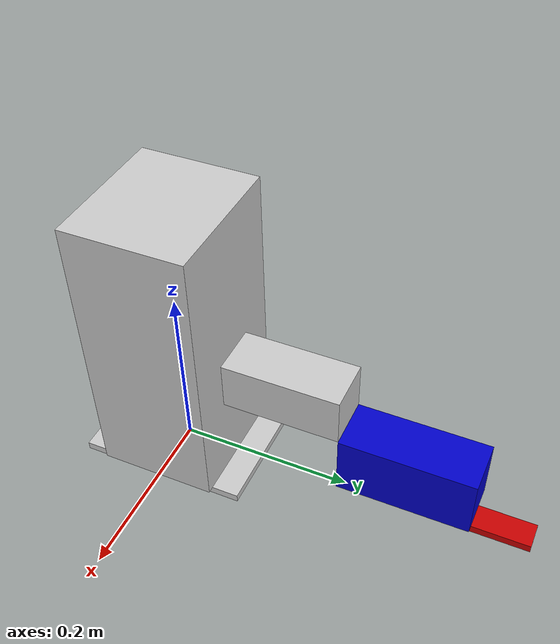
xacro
<?xml version="1.0" ?>

<robot name="myworkcell2" xmlns:xacro="http://ros.org/wiki/xacro">

<xacro:property name="damping_value" value="1" />
  <xacro:property name="friction_value" value="1" />
  <xacro:property name="mass_upper_links" value=".2" />
  <material name="blue">
    <color rgba="0 0 .8 .9"/>
  </material>
  <material name="pvc">
    <color rgba=".8 .8 .8 1"/>
  </material>
  <material name="black">
    <color rgba="0 0 0 1"/>
  </material>
  <material name="aluminum">
    <color rgba=".144 .144 .144 .8"/>
  </material>
  <material name="white">
      <color rgba="1 1 1 1"/>
  </material>
  <material name="red">
      <color rgba="0.8 0 0 1"/>
  </material>
  <material name="green">
      <color rgba="0 1 0 1"/>
  </material>
  <material name="yellow">
      <color rgba="1 1 0 1"/>
  </material>

  <!-- Used for fixing robot to Gazebo 'base_link'-->
  <link name="world">
      <origin xyz="0 0 0"/>
  </link>

  <link name="camera_frame">
    <visual>
      <geometry>
        <box size=".139 .195 .009"/>
      </geometry>
      <material name="pvc"/>
      <origin rpy="0 0 0" xyz="0 0 0" />
    </visual>
    <collision>
      <geometry>
        <box size=".139 .195 .009"/>
      </geometry>
    </collision>
    <inertial>
    	<mass value="4" />
         <inertia ixx="0.4" ixy="0.0" ixz="0.0" iyy="0.4" iyz="0.0" izz="0.2"/>
      <origin xyz="0 0 0" rpy="0 0 0" />
  	</inertial>
  </link>

  <joint name="fixed" type="fixed">
    <parent link="world"/>
    <child link="camera_frame"/>
    <origin xyz="0 0 0" rpy="0 0 0"/>
  </joint>

  <link name="scapula">
    <visual>
      <geometry>
        <box size=".155 .134 .320"/>
      </geometry>
      <origin rpy="0 0 0" xyz="0 0 .075"/>
      <material name="pvc"/>
    </visual>
    <collision>
      <geometry>
        <box size=".155 .134 .320"/>
      </geometry>
    </collision>
    <inertial>
    		<mass value="${mass_upper_links}" />
    <inertia ixx="0.4" ixy="0.0" ixz="0.0" iyy="0.4" iyz="0.0" izz="0.2"/>
  	</inertial>
  </link>

  <joint name="waist" type="revolute">
    <parent link="camera_frame"/>
    <child link="scapula"/>
    <axis xyz="0 0 1" />
    <origin xyz="0 0 .09"/>
    <limit lower="-3" upper="3" effort="30" velocity="1" />
    <visual>
      <material name="aluminum"/>
    </visual>
    <dynamics damping="${damping_value}" friction="${friction_value}" />
  </joint>

  <transmission name="waist_trans">
    <type>transmission_interface/SimpleTransmission</type>
    <actuator name="$waist_motor">
      <mechanicalReduction>20</mechanicalReduction>
    </actuator>
    <joint name="waist">
      <hardwareInterface>hardware_interface/PositionJointInterface</hardwareInterface>
    </joint>
  </transmission>

  <link name="humerus">
    <visual>
      <geometry>
        <box size=".200 .059 .056"/>
      </geometry>
      <origin rpy="0 0 1.57057" xyz="0 .100 0"/>
      <material name="pvc"/>
    </visual>
    <collision>
      <geometry>
        <box size=".255 .059 .056"/>
      </geometry>
    </collision>
    <inertial>
    		<mass value="${mass_upper_links}" />
    <inertia ixx="0.4" ixy="0.0" ixz="0.0" iyy="0.4" iyz="0.0" izz="0.2"/>
  </inertial>
  </link>

  <joint name="shoulder" type="prismatic">
    <parent link="scapula"/>
    <child link="humerus"/>
    <axis xyz="0 0 1" />
    <origin xyz="0 0 .04" rpy="0 0 0" />
    <limit lower="0" upper=".155" effort="30" velocity="1"/>
    <dynamics damping="${damping_value}" friction="${friction_value}" />
  </joint>

  <transmission name="shoulder_trans">
    <type>transmission_interface/SimpleTransmission</type>
    <actuator name="$shoulder_motor">
      <mechanicalReduction>5</mechanicalReduction>
    </actuator>
    <joint name="shoulder">
      <hardwareInterface>hardware_interface/PositionJointInterface</hardwareInterface>
    </joint>
  </transmission>

  <link name="forearm">
    <visual>
      <geometry>
        <box size=".150 .06 .072"/>
      </geometry>
      <origin xyz="0 .0750 0" rpy="0 0 1.57057" />
      <material name="blue"/>
    </visual>
    <collision>
      <geometry>
        <box size=".150 .06 .072"/>
      </geometry>
    </collision>
    <inertial>
    	<mass value="${mass_upper_links}" />
      <inertia ixx="0.4" ixy="0.0" ixz="0.0" iyy="0.4" iyz="0.0" izz="0.2"/>
    </inertial>
  </link>

  <joint name="elbow" type="revolute">
    <parent link="humerus"/>
    <child link="forearm"/>
    <limit lower="-2.44" upper="2.44" effort="30" velocity="1"/>
    <origin xyz="0 .200 -.065" rpy="0 0 0" />
    <axis xyz="0 0 1" />
    <dynamics damping="${damping_value}" friction="${friction_value}" />
  </joint>

  <transmission name="elbow_trans">
    <type>transmission_interface/SimpleTransmission</type>
    <actuator name="$elbow_motor">
      <mechanicalReduction>12</mechanicalReduction>
    </actuator>
    <joint name="elbow">
      <hardwareInterface>hardware_interface/PositionJointInterface</hardwareInterface>
    </joint>
  </transmission>

	<link name="hand">
    <visual>
      <geometry>
        <box size=".03  .129 .009"/>
      </geometry>
      <origin xyz="0 0 0 " rpy="1.57057 0 0"/>
      <material name="red"/>
    </visual>
    <collision>
      <geometry>
        <box size=".03  .129 .009"/>
      </geometry>
    </collision>
    <inertial>
    		<mass value="${mass_upper_links}" />
    <inertia ixx="0.4" ixy="0.0" ixz="0.0" iyy="0.4" iyz="0.0" izz="0.2"/>
	</inertial>
	</link>

  <joint name="wrist" type="continuous">
    <parent link="forearm"/>
    <child link="hand"/>
    <origin xyz="0 .150 -.05" rpy="1.57057 0  0 " />
    <axis xyz="0 1 0" />
    <dynamics damping="${damping_value}" friction="${friction_value}" />
    <limit effort="30" velocity="1" />
  </joint>

  <transmission name="wrist_trans">
    <type>transmission_interface/SimpleTransmission</type>
    <actuator name="$wrist_motor">
      <mechanicalReduction>4</mechanicalReduction>
    </actuator>
    <joint name="wrist">
      <hardwareInterface>hardware_interface/PositionJointInterface</hardwareInterface>
    </joint>
  </transmission>

  <gazebo>
    <plugin name="gazebo_ros_control" filename="libgazebo_ros_control.so">
      <robotNamespace>/</robotNamespace>
    </plugin>
  </gazebo>

  <gazebo reference="camera_frame">
      <static>true</static>
      <turnGravityOff>false</turnGravityOff>
  </gazebo>

</robot>
